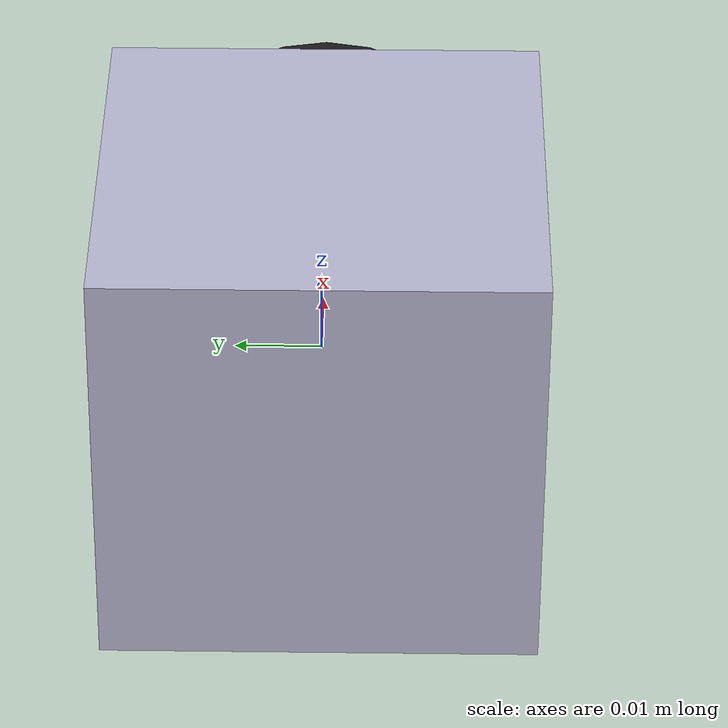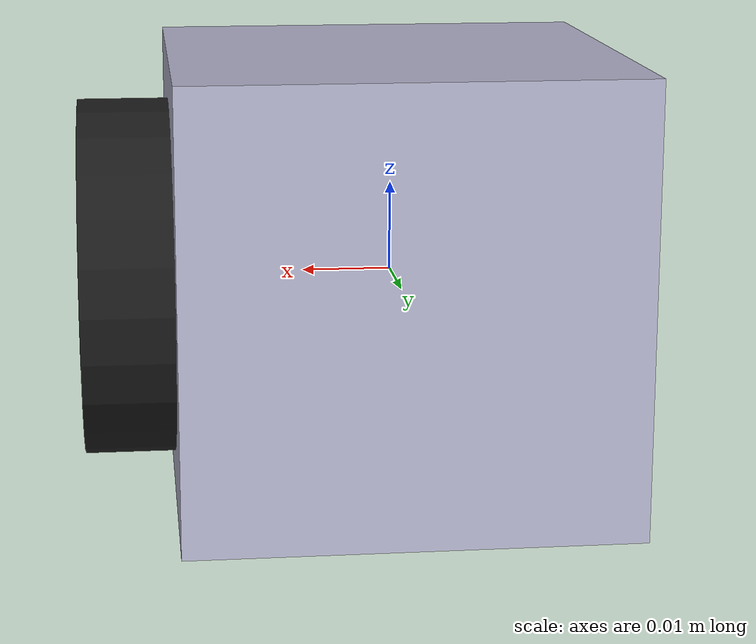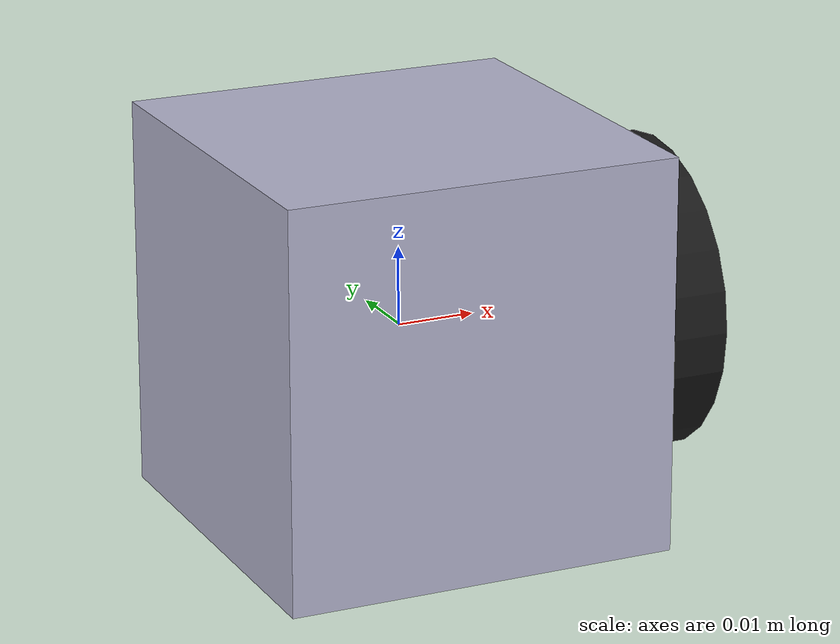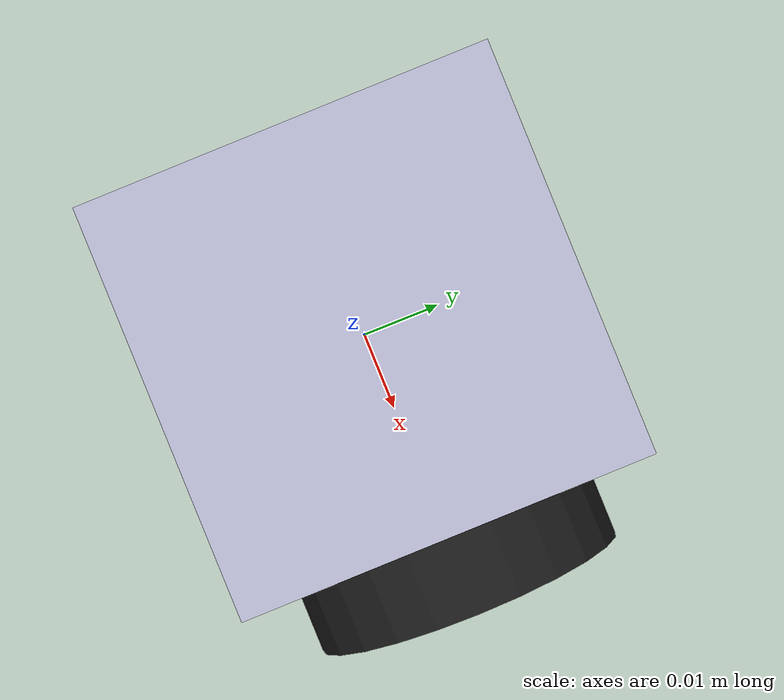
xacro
<?xml version="1.0"?>
<robot name="simple_camera" xmlns:xacro="http://ros.org/wiki/xacro">

  <xacro:property name="camera_size" value="0.05" />
  <link name="camera_link">
    <collision>
      <origin xyz="0 0 0" rpy="0 0 0"/>
      <geometry>
    <box size="${camera_size} ${camera_size} ${camera_size}"/>
      </geometry>
    </collision>

    <visual>
      <origin xyz="0 0 0" rpy="0 0 0"/>
      <geometry>
    <box size="${camera_size} ${camera_size} ${camera_size}"/>
      </geometry>
      <material name="cam_body">
        <color rgba="0.7 0.7 0.8 1" />
      </material>
    </visual>

    <inertial>
      <mass value="1e-5" />
      <origin xyz="0 0 0" rpy="0 0 0"/>
      <inertia ixx="1e-6" ixy="0" ixz="0" iyy="1e-6" iyz="0" izz="1e-6" />
    </inertial>
  </link>
  <gazebo reference="camera_link">
    <material>Gazebo/Turquoise</material>
  </gazebo>

  <link name="camera_lens">
    <collision>
      <origin xyz="0.0 0.0 0.0" rpy="0.0 1.5706 0.0" />
      <geometry>
        <cylinder radius="0.02" length="0.01" />
      </geometry>
    </collision>

    <visual>
      <origin xyz="0.0 0.0 0.0" rpy="0.0 1.5706 0.0" />
      <origin xyz="0 0 0" rpy="0 0 0"/>
      <geometry>
        <cylinder radius="0.02" length="0.01" />
      </geometry>
      <material name="cam_lens">
        <color rgba="0.1 0.1 0.1 1" />
      </material>
    </visual>

    <inertial>
      <mass value="1e-5" />
      <origin xyz="0.0 0.0 0.0" rpy="0.0 1.5706 0.0" />
      <origin xyz="0 0 0" rpy="0 0 0"/>
      <inertia ixx="1e-6" ixy="0" ixz="0" iyy="1e-6" iyz="0" izz="1e-6" />
    </inertial>
  </link>
  <gazebo reference="camera_lens">
    <material>Gazebo/DarkGrey</material>
  </gazebo>

  <joint name="camera_to_lens" type="fixed">
    <parent link="camera_link" />
    <child link = "camera_lens" />
    <origin xyz="0.03 0 0" rpy="0 0 0"/>
  </joint>

  <!-- camera gazebo stuff -->
  <gazebo reference="camera_lens">
    <sensor type="camera" name="camera1">
      <update_rate>30.0</update_rate>
      <camera name="head">
        <horizontal_fov>1.3962634</horizontal_fov>
        <image>
          <width>800</width>
          <height>800</height>
          <format>R8G8B8</format>
        </image>
        <clip>
          <near>0.02</near>
          <far>300</far>
        </clip>
        <noise>
          <type>gaussian</type>
          <!-- Noise is sampled independently per pixel on each frame.
               That pixel's noise value is added to each of its color
               channels, which at that point lie in the range [0,1]. -->
          <mean>0.0</mean>
          <stddev>0.007</stddev>
        </noise>
      </camera>
      <plugin name="camera_controller" filename="libgazebo_ros_camera.so">
        <alwaysOn>true</alwaysOn>
        <updateRate>0.0</updateRate>
        <cameraName>camera1</cameraName>
        <imageTopicName>image_raw</imageTopicName>
        <cameraInfoTopicName>camera_info</cameraInfoTopicName>
        <frameName>camera_lens</frameName>
        <hackBaseline>0.07</hackBaseline>
        <distortionK1>0.0</distortionK1>
        <distortionK2>0.0</distortionK2>
        <distortionK3>0.0</distortionK3>
        <distortionT1>0.0</distortionT1>
        <distortionT2>0.0</distortionT2>
      </plugin>
    </sensor>
  </gazebo>

</robot>
